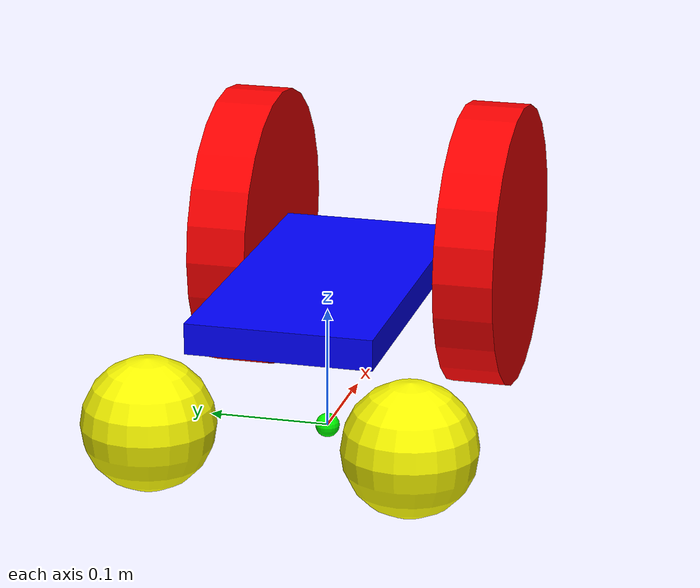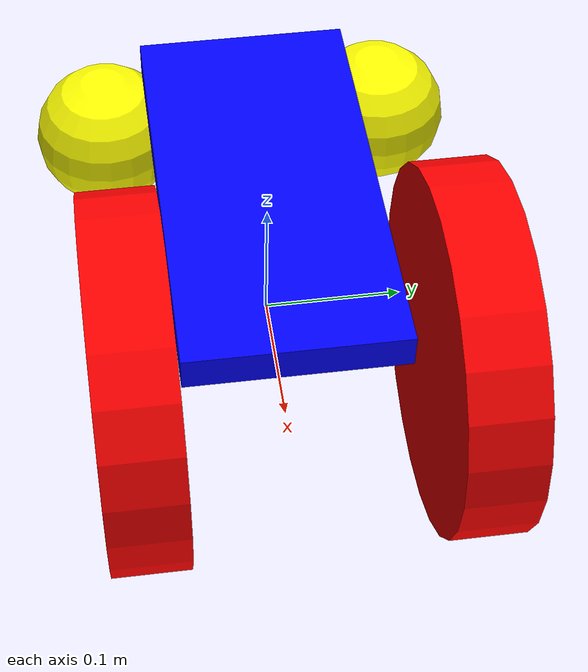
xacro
<?xml version="1.0"?>

<robot name="swim_bot"
    xmlns:xacro="http://ros.org/wiki/xacro">

    <!-- 计算惯性矩阵xacro -->
    <xacro:include filename="inertial.xacro"/>
    <xacro:property name="pi" value="3.1415926"/>

    <xacro:property name="base_link_mass" value="0.2"/>
    <xacro:property name="base_link_length" value="0.3"/>
    <xacro:property name="base_link_width" value="0.15"/>
    <xacro:property name="base_link_height" value="0.025"/>

    <xacro:property name="wheel_active_mass" value="0.1"/>
    <xacro:property name="wheel_active_radius" value="0.12"/>
    <xacro:property name="wheel_active_width" value="0.05"/>
    <xacro:property name="wheel_position_biasY" value="${base_link_width/2 + wheel_active_width/2 + 0.005}"/>

    <xacro:property name="wheel_passive_mass" value="0.1"/>
    <xacro:property name="wheel_passive_radius" value="${(wheel_active_radius - base_link_height/2)/2}"/>
    <xacro:property name="wheel_passive_position_biasZ" value="${wheel_active_radius/2+base_link_height/2}"/>

    <!-- 色阶 -->
    <material name="red">
        <color rgba="1 0 0 1"/>
    </material>
    <material name="green">
        <color rgba="0 1 0 1"/>
    </material>
    <material name="blue">
        <color rgba="0 0 1 1"/>
    </material>
    <material name="yellow">
        <color rgba="1 1 0 1"/>
    </material>
    <material name="cyan">
        <color rgba="0 1 1 1"/>
    </material>
    <material name="white">
        <color rgba="1 1 1 1"/>
    </material>
    <material name="black">
        <color rgba="0 0 0 1"/>
    </material>

    <!-- 虚拟连杆 -->
    <link name="dummy_link">
        <visual>
            <geometry>
                <sphere radius="0.01"/>
            </geometry>
            <material name="green"/>
        </visual>
    </link>
    <gazebo reference = "dummy_link">
        <material>Gazebo/Green</material>
    </gazebo>

    <!-- 车身 -->
    <link name="base_link">
        <visual>
            <geometry>
                <box size="${base_link_length} ${base_link_width} ${base_link_height}" />
            </geometry>
            <origin xyz="0 0 0" rpy="0 0 0" />
            <material name="blue"/>
        </visual>
        <collision>
            <geometry>
                <box size="${base_link_length} ${base_link_width} ${base_link_height}" />
            </geometry>
            <origin xyz="0 0 0" rpy="0 0 0" />
            <material name="blue"/>
        </collision>
        <!-- 调用惯性参数矩阵函数 -->
        <xacro:Box_inertial_matrix m="${base_link_mass}" l="${base_link_length}" w="${base_link_width}" h="${base_link_height}"/>
    </link>
    <gazebo reference="base_link">
        <material>Gazebo/Blue</material>
    </gazebo>
    <joint name="base2dummy" type="fixed">
        <parent link="dummy_link"/>
        <child link="base_link"/>
        <origin xyz="0 0 ${wheel_active_radius}" rpy="0 0 0" />
    </joint>

    <!-- 主动轮 -->
    <xacro:macro name="wheel_active" params = "posflag position">
        <link name="wheel_active_${position}">
            <visual>
                <geometry>
                    <cylinder radius="${wheel_active_radius}" length="${wheel_active_width}"/>
                </geometry>
                <origin xyz="0 0 0" rpy="${pi/2} 0 0"/>
                <material name="red"/>
            </visual>
            <collision>
                <geometry>
                    <cylinder radius="${wheel_active_radius}" length="${wheel_active_width}"/>
                </geometry>
                <origin xyz="0 0 0" rpy="${pi/2} 0 0"/>
                <material name="red"/>
            </collision>
            <xacro:cylinder_inertial_matrix m="${wheel_active_mass}" r="${wheel_active_radius}" h="${wheel_active_width}"/>
        </link>
        <joint name="wheel_active_${position}_2_base_link" type="continuous">
            <parent link="base_link"/>
            <child link="wheel_active_${position}"/>
            <origin xyz="${base_link_length/2} ${posflag * wheel_position_biasY} 0"/>
            <axis xyz="0 1 0"/>
        </joint>
        <gazebo reference="wheel_active_${position}">
            <mu1 value="200"/>
            <mu2 value="100"/>
            <material>Gazebo/Red</material>
        </gazebo>
        <transmission name="wheel_active_${position}_trans">
            <type>transmission_interface/SimpleTransmission</type>
            <joint name="wheel_active_${position}_2_base_link">
                <hardwareInterface>hardware_interface/EffortJointInterface</hardwareInterface>
            </joint>
            <actuator name="wheel_active_${position}_motor">
                <mechanicalReduction>1.0</mechanicalReduction>
            </actuator>
        </transmission>
    </xacro:macro>
    <!-- 调用函数 -->
    <xacro:wheel_active posflag="1" position="left"/>
    <xacro:wheel_active posflag="-1" position="right"/>

    <!-- 从动轮 -->
    <xacro:macro name="wheel_passive" params = "posflag position">
        <link name="wheel_passive_${position}">
            <visual>
                <geometry>
                    <sphere radius="${wheel_passive_radius}" />
                </geometry>
                <origin xyz="0 0 0" rpy="0 0 0"/>
                <material name="yellow"/>
            </visual>
            <collision>
                <geometry>
                    <sphere radius="${wheel_passive_radius}" />
                </geometry>
                <origin xyz="0 0 0" rpy="0 0 0"/>
                <material name="yellow"/>
            </collision>
            <xacro:sphere_inertial_matrix m="${wheel_passive_mass}" r="${wheel_passive_radius}" />
        </link>
        <joint name="wheel_passive_${position}_2_base_link" type="continuous">
            <parent link="base_link"/>
            <child link="wheel_passive_${position}"/>
            <origin xyz="${-base_link_length/2} ${posflag * wheel_position_biasY} ${-wheel_passive_position_biasZ}"/>
            <axis xyz="1 1 0"/>
        </joint>
        <gazebo reference="wheel_passive_${position}">
            <mu1 value="200"/>
            <mu2 value="100"/>
            <material>Gazebo/Yellow</material>
        </gazebo>
        <transmission name="wheel_passive_${position}_trans">
            <type>transmission_interface/SimpleTransmission</type>
            <joint name="wheel_passive_${position}_2_base_link">
                <hardwareInterface>hardware_interface/EffortJointInterface</hardwareInterface>
            </joint>
            <actuator name="wheel_passive_${position}_motor">
                <mechanicalReduction>1.0</mechanicalReduction>
            </actuator>
        </transmission>
    </xacro:macro>
    <!-- 调用函数 -->
    <xacro:wheel_passive posflag="1" position="left"/>
    <xacro:wheel_passive posflag="-1" position="right"/>

    <gazebo>
        <plugin name="gazebo_ros_control" filename="libgazebo_ros_control.so">
            <robotNamespace>/swim_bot</robotNamespace>
        </plugin>
    </gazebo>
</robot>
